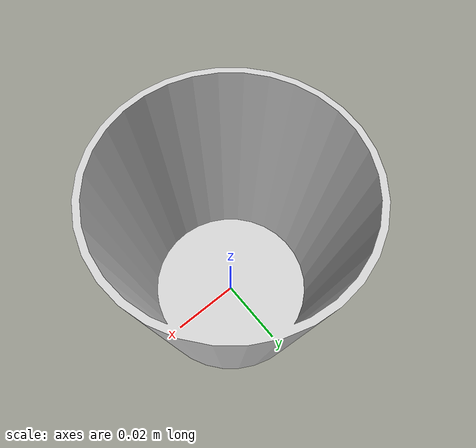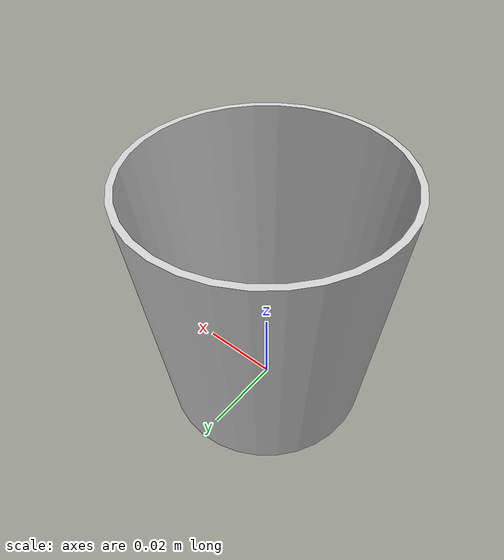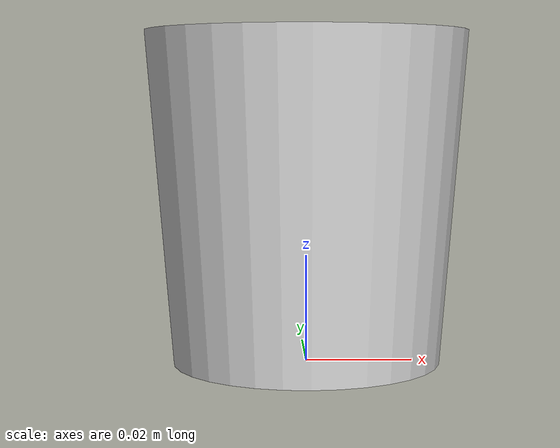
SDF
<?xml version="1.0" ?>
<sdf version="1.0">
  <model name="medicine_cup">
    <static>false</static>
    <link name="medicine_cup">
      <inertial>
        <mass> 0.01 </mass>
        <!-- treated as infinitely thin rod with radius(r) and length(l) of 6cm, i_xx = m*(6*r^2+4*l^2)/12, i_yy = m*(6*r^2+4*l^2)/12, i_zz = m*r^2 -->
        <inertia>  ixx="0.00003" ixy="0.0"  ixz="0.0"  iyy="0.00003"  iyz="0.0"  izz="0.000036"
          <ixx> 0.00003 </ixx>
          <ixy> 0.0 </ixy>
          <ixz> 0.0 </ixz>
          <iyy> 0.00003 </iyy>
          <iyz> 0.0 </iyz>
          <izz> 0.000036 </izz>
        </inertia>
      </inertial>

      <collision name="medicine_cup">
        <pose>0 0 0 0 0 0</pose>
        <geometry>
          <mesh>
            <uri>model://medicine_cup/meshes/model.dae</uri>
          </mesh>
        </geometry>
        <surface>
          <friction><ode><mu>1.0</mu><mu2>1.0</mu2></ode></friction>
          <contact><ode><kp>10000000.0</kp><kd>1.0</kd><min_depth>0.001</min_depth><max_vel>0.1</max_vel></ode></contact>
        </surface>
      </collision>

      <visual name="medicine_cup_mesh">
    	  <cast_shadows>true</cast_shadows>
        <geometry>
          <mesh>
	        <uri>model://medicine_cup/meshes/model.dae</uri>
	      </mesh>
        </geometry>
      </visual>
    </link>
  </model>
</sdf>
